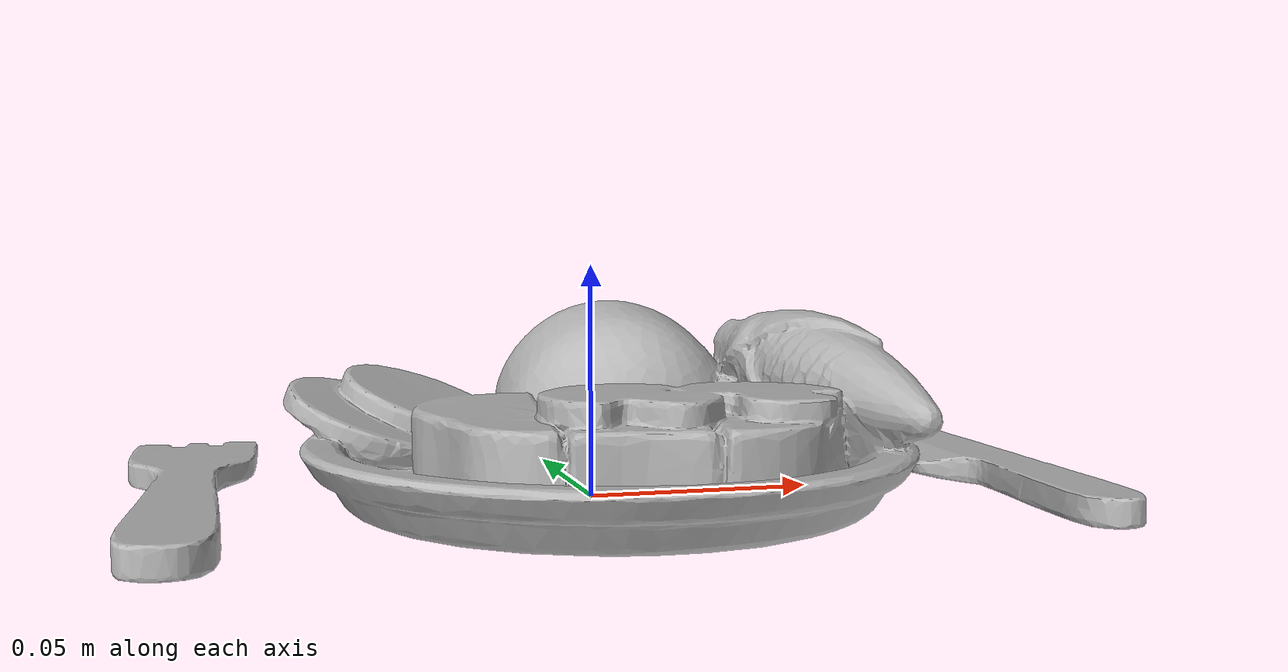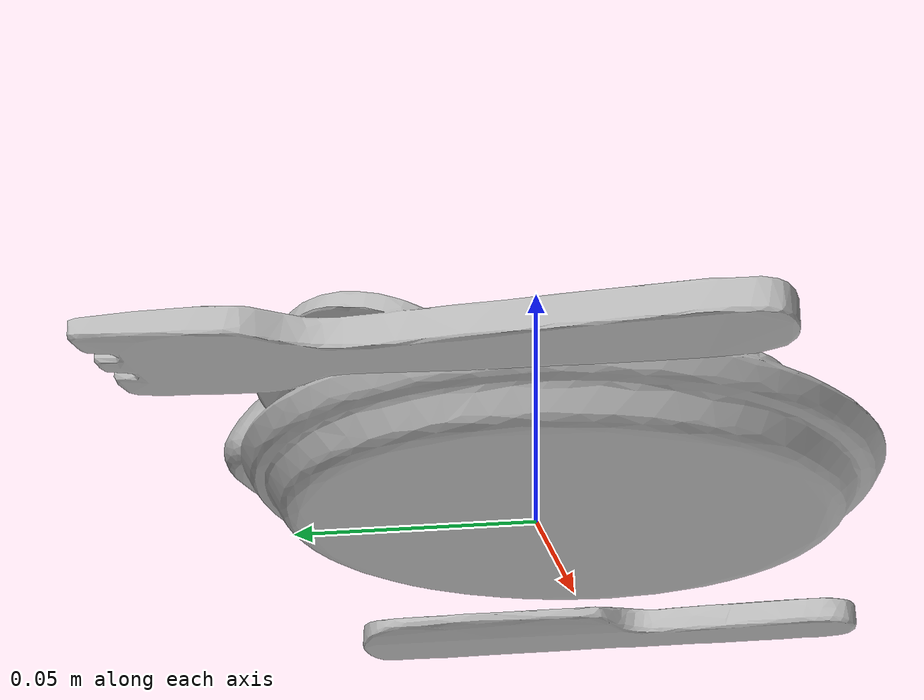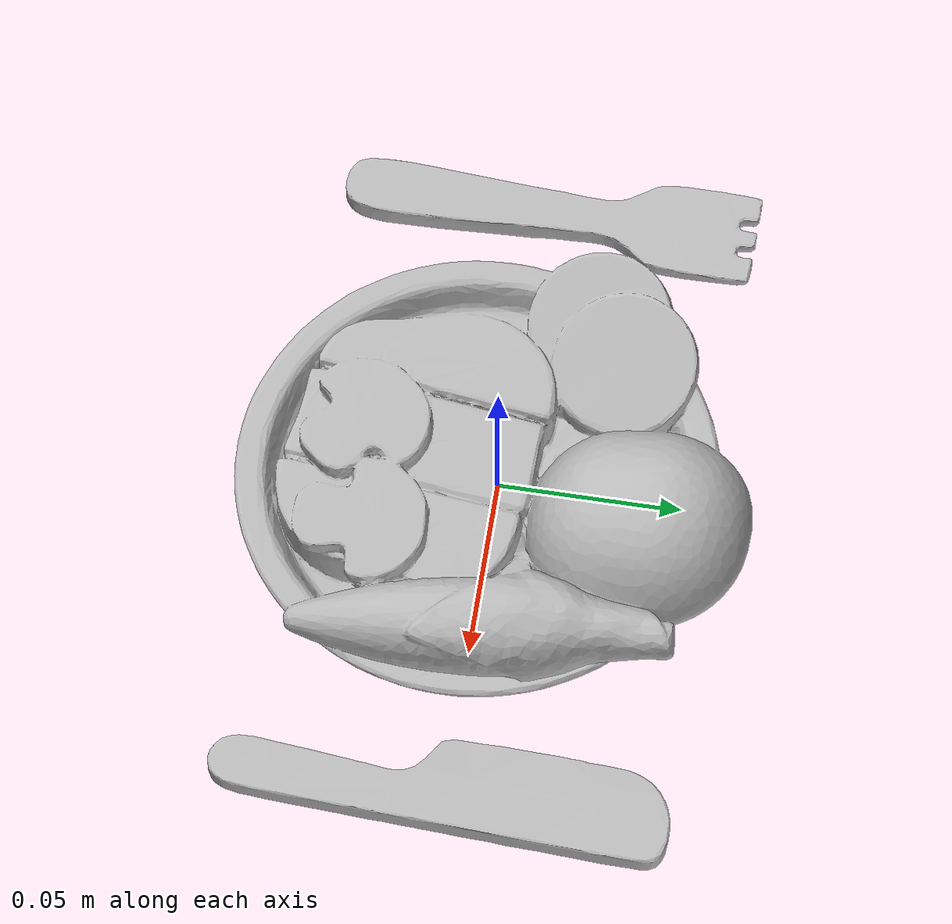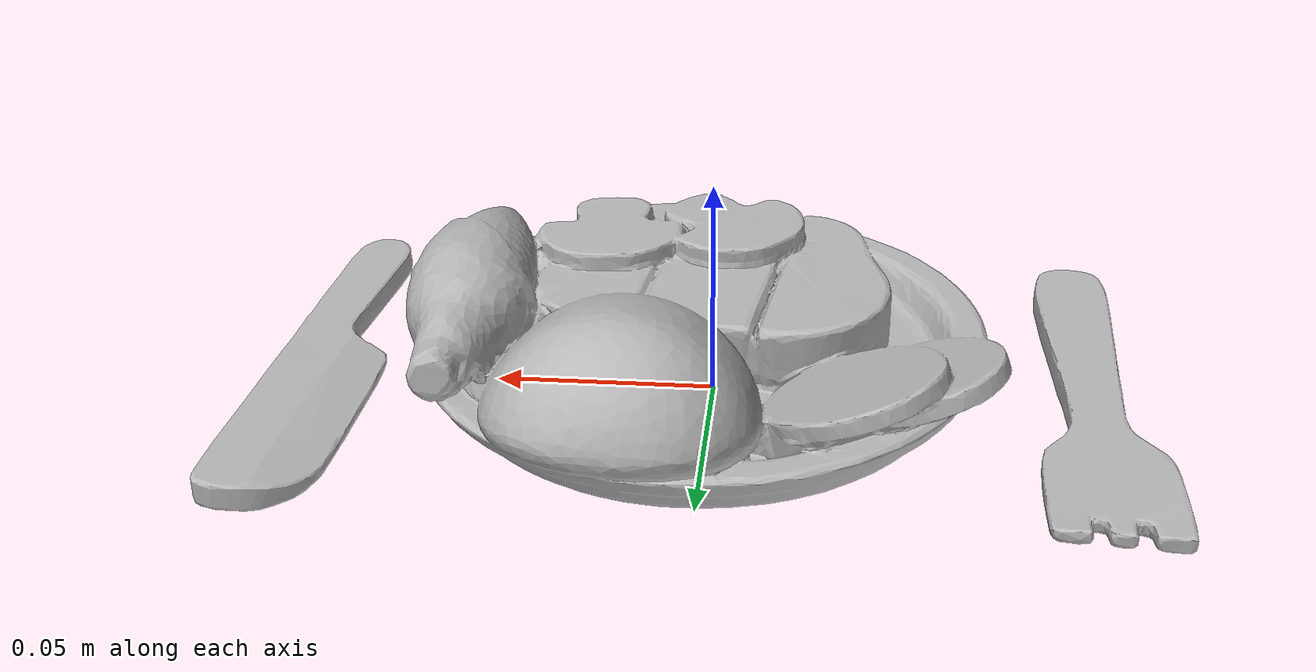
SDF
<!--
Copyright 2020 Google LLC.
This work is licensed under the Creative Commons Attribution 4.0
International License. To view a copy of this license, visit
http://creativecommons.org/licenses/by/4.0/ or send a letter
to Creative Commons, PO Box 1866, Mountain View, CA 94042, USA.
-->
<?xml version="1.0" ?>
<sdf version="1.6">
  <model name="STEAK_SET">
    <link name="link_0">
      <visual name="visual">
        <geometry>
          <mesh>
            <uri>meshes/model.obj</uri>
          </mesh>
        </geometry>
      </visual>
      <collision name="collision_0">
        <geometry>
          <mesh>
            <uri>meshes/model.obj</uri>
          </mesh>
        </geometry>
        <surface>
          <friction>
            <ode>
              <mu>1.5</mu>
              <mu2>1.5</mu2>
            </ode>
          </friction>

          <contact>
            <ode>
              <kp>100000</kp>
              <kd>1.0</kd>
            </ode>
          </contact>
        </surface>
      </collision>
    </link>
  </model>
</sdf>
